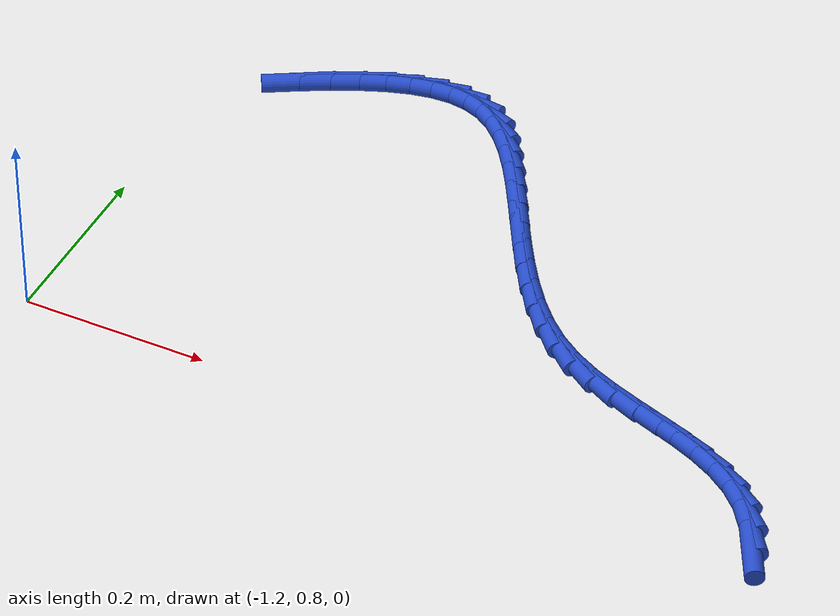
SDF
<sdf version="1.6">
 <world name="default">
  <model name="ground_plane">
   <static>1</static>
   <link name="link">
    <collision name="collision">
     <geometry><plane><normal>0 0 1</normal><size>100 100</size></plane></geometry>
     <surface><friction><ode><mu>100</mu><mu2>50</mu2></ode></friction></surface>
    </collision>
    <visual name="visual">
     <cast_shadows>0</cast_shadows>
     <geometry><plane><normal>0 0 1</normal><size>100 100</size></plane></geometry>
     <material>
      <script><uri>file://media/materials/scripts/gazebo.material</uri><name>Gazebo/WhiteGlow</name></script>
     </material>
    </visual>
   </link>
  </model>
  <model name="line">
   <link name="link_32">
    <pose>-0.40783179814437837 0.7889723178215621 0.01 0 1.57 -1.1016841542292362</pose>
    <collision name="collision">
     <geometry><cylinder><radius>0.01</radius><length>0.08</length></cylinder></geometry>
    </collision>
    <visual name="visual">
     <material>
      <script><name>Gazebo/Blue</name><uri>file://media/materials/scripts/gazebo.material</uri></script>
     </material>
     <geometry><cylinder><radius>0.01</radius><length>0.08</length></cylinder></geometry>
    </visual>
   </link>
   <link name="link_33">
    <pose>-0.42098826657242644 0.8149296656260628 0.01 0 1.57 -0.9530964984346205</pose>
    <collision name="collision">
     <geometry><cylinder><radius>0.01</radius><length>0.08</length></cylinder></geometry>
    </collision>
    <visual name="visual">
     <material>
      <script><name>Gazebo/Blue</name><uri>file://media/materials/scripts/gazebo.material</uri></script>
     </material>
     <geometry><cylinder><radius>0.01</radius><length>0.08</length></cylinder></geometry>
    </visual>
   </link>
   <link name="link_34">
    <pose>-0.4374549483786912 0.8381077394394795 0.01 0 1.57 -0.7789869360752086</pose>
    <collision name="collision">
     <geometry><cylinder><radius>0.01</radius><length>0.08</length></cylinder></geometry>
    </collision>
    <visual name="visual">
     <material>
      <script><name>Gazebo/Blue</name><uri>file://media/materials/scripts/gazebo.material</uri></script>
     </material>
     <geometry><cylinder><radius>0.01</radius><length>0.08</length></cylinder></geometry>
    </visual>
   </link>
   <link name="link_35">
    <pose>-0.4571206233203562 0.8575228551155695 0.01 0 1.57 -0.6121597621778474</pose>
    <collision name="collision">
     <geometry><cylinder><radius>0.01</radius><length>0.08</length></cylinder></geometry>
    </collision>
    <visual name="visual">
     <material>
      <script><name>Gazebo/Blue</name><uri>file://media/materials/scripts/gazebo.material</uri></script>
     </material>
     <geometry><cylinder><radius>0.01</radius><length>0.08</length></cylinder></geometry>
    </visual>
   </link>
   <link name="link_36">
    <pose>-0.4795897762439565 0.8732993125916804 0.01 0 1.57 -0.4834493400329303</pose>
    <collision name="collision">
     <geometry><cylinder><radius>0.01</radius><length>0.08</length></cylinder></geometry>
    </collision>
    <visual name="visual">
     <material>
      <script><name>Gazebo/Blue</name><uri>file://media/materials/scripts/gazebo.material</uri></script>
     </material>
     <geometry><cylinder><radius>0.01</radius><length>0.08</length></cylinder></geometry>
    </visual>
   </link>
   <link name="link_37">
    <pose>-0.5042863390584588 0.8862650817393635 0.01 0 1.57 -0.3953471236145597</pose>
    <collision name="collision">
     <geometry><cylinder><radius>0.01</radius><length>0.08</length></cylinder></geometry>
    </collision>
    <visual name="visual">
     <material>
      <script><name>Gazebo/Blue</name><uri>file://media/materials/scripts/gazebo.material</uri></script>
     </material>
     <geometry><cylinder><radius>0.01</radius><length>0.08</length></cylinder></geometry>
    </visual>
   </link>
   <link name="link_38">
    <pose>-0.5306313605147939 0.8972593689774838 0.01 0 1.57 -0.3453224569784814</pose>
    <collision name="collision">
     <geometry><cylinder><radius>0.01</radius><length>0.08</length></cylinder></geometry>
    </collision>
    <visual name="visual">
     <material>
      <script><name>Gazebo/Blue</name><uri>file://media/materials/scripts/gazebo.material</uri></script>
     </material>
     <geometry><cylinder><radius>0.01</radius><length>0.08</length></cylinder></geometry>
    </visual>
   </link>
   <link name="link_39">
    <pose>-0.5580458893638928 0.9071213807249056 0.01 0 1.57 -0.3303449713938625</pose>
    <collision name="collision">
     <geometry><cylinder><radius>0.01</radius><length>0.08</length></cylinder></geometry>
    </collision>
    <visual name="visual">
     <material>
      <script><name>Gazebo/Blue</name><uri>file://media/materials/scripts/gazebo.material</uri></script>
     </material>
     <geometry><cylinder><radius>0.01</radius><length>0.08</length></cylinder></geometry>
    </visual>
   </link>
   <link name="link_40">
    <pose>-0.5859509743566863 0.9166903234004934 0.01 0 1.57 -0.3487684655081734</pose>
    <collision name="collision">
     <geometry><cylinder><radius>0.01</radius><length>0.08</length></cylinder></geometry>
    </collision>
    <visual name="visual">
     <material>
      <script><name>Gazebo/Blue</name><uri>file://media/materials/scripts/gazebo.material</uri></script>
     </material>
     <geometry><cylinder><radius>0.01</radius><length>0.08</length></cylinder></geometry>
    </visual>
   </link>
   <link name="link_41">
    <pose>-0.6137676642441052 0.9268054034231114 0.01 0 1.57 -0.40068304663403403</pose>
    <collision name="collision">
     <geometry><cylinder><radius>0.01</radius><length>0.08</length></cylinder></geometry>
    </collision>
    <visual name="visual">
     <material>
      <script><name>Gazebo/Blue</name><uri>file://media/materials/scripts/gazebo.material</uri></script>
     </material>
     <geometry><cylinder><radius>0.01</radius><length>0.08</length></cylinder></geometry>
    </visual>
   </link>
   <link name="link_42">
    <pose>-0.6409170077770807 0.9383058272116248 0.01 0 1.57 -0.4872488547449545</pose>
    <collision name="collision">
     <geometry><cylinder><radius>0.01</radius><length>0.08</length></cylinder></geometry>
    </collision>
    <visual name="visual">
     <material>
      <script><name>Gazebo/Blue</name><uri>file://media/materials/scripts/gazebo.material</uri></script>
     </material>
     <geometry><cylinder><radius>0.01</radius><length>0.08</length></cylinder></geometry>
    </visual>
   </link>
   <link name="link_43">
    <pose>-0.6668200537065435 0.9520308011848979 0.01 0 1.57 -0.6084066487717664</pose>
    <collision name="collision">
     <geometry><cylinder><radius>0.01</radius><length>0.08</length></cylinder></geometry>
    </collision>
    <visual name="visual">
     <material>
      <script><name>Gazebo/Blue</name><uri>file://media/materials/scripts/gazebo.material</uri></script>
     </material>
     <geometry><cylinder><radius>0.01</radius><length>0.08</length></cylinder></geometry>
    </visual>
   </link>
   <link name="link_44">
    <pose>-0.6909050541292129 0.96880720377337 0.01 0 1.57 -0.7390649176321223</pose>
    <collision name="collision">
     <geometry><cylinder><radius>0.01</radius><length>0.08</length></cylinder></geometry>
    </collision>
    <visual name="visual">
     <material>
      <script><name>Gazebo/Blue</name><uri>file://media/materials/scripts/gazebo.material</uri></script>
     </material>
     <geometry><cylinder><radius>0.01</radius><length>0.08</length></cylinder></geometry>
    </visual>
   </link>
   <link name="link_45">
    <pose>-0.7129366236131514 0.988886254154824 0.01 0 1.57 -0.8459336072416772</pose>
    <collision name="collision">
     <geometry><cylinder><radius>0.01</radius><length>0.08</length></cylinder></geometry>
    </collision>
    <visual name="visual">
     <material>
      <script><name>Gazebo/Blue</name><uri>file://media/materials/scripts/gazebo.material</uri></script>
     </material>
     <geometry><cylinder><radius>0.01</radius><length>0.08</length></cylinder></geometry>
    </visual>
   </link>
   <link name="link_46">
    <pose>-0.7331520311246378 1.0117102587988083 0.01 0 1.57 -0.9283470060510146</pose>
    <collision name="collision">
     <geometry><cylinder><radius>0.01</radius><length>0.08</length></cylinder></geometry>
    </collision>
    <visual name="visual">
     <material>
      <script><name>Gazebo/Blue</name><uri>file://media/materials/scripts/gazebo.material</uri></script>
     </material>
     <geometry><cylinder><radius>0.01</radius><length>0.08</length></cylinder></geometry>
    </visual>
   </link>
   <link name="link_47">
    <pose>-0.7518240000289094 1.0366608466185265 0.01 0 1.57 -0.9890455743865944</pose>
    <collision name="collision">
     <geometry><cylinder><radius>0.01</radius><length>0.08</length></cylinder></geometry>
    </collision>
    <visual name="visual">
     <material>
      <script><name>Gazebo/Blue</name><uri>file://media/materials/scripts/gazebo.material</uri></script>
     </material>
     <geometry><cylinder><radius>0.01</radius><length>0.08</length></cylinder></geometry>
    </visual>
   </link>
   <link name="link_48">
    <pose>-0.7692252536912018 1.0631196465271808 0.01 0 1.57 -1.0305360807766697</pose>
    <collision name="collision">
     <geometry><cylinder><radius>0.01</radius><length>0.08</length></cylinder></geometry>
    </collision>
    <visual name="visual">
     <material>
      <script><name>Gazebo/Blue</name><uri>file://media/materials/scripts/gazebo.material</uri></script>
     </material>
     <geometry><cylinder><radius>0.01</radius><length>0.08</length></cylinder></geometry>
    </visual>
   </link>
   <link name="link_49">
    <pose>-0.7856285154767519 1.0904682874379752 0.01 0 1.57 -1.0545187166941372</pose>
    <collision name="collision">
     <geometry><cylinder><radius>0.01</radius><length>0.08</length></cylinder></geometry>
    </collision>
    <visual name="visual">
     <material>
      <script><name>Gazebo/Blue</name><uri>file://media/materials/scripts/gazebo.material</uri></script>
     </material>
     <geometry><cylinder><radius>0.01</radius><length>0.08</length></cylinder></geometry>
    </visual>
   </link>
   <link name="link_50">
    <pose>-0.8013065087507969 1.1180883982641125 0.01 0 1.57 -1.0616362162556325</pose>
    <collision name="collision">
     <geometry><cylinder><radius>0.01</radius><length>0.08</length></cylinder></geometry>
    </collision>
    <visual name="visual">
     <material>
      <script><name>Gazebo/Blue</name><uri>file://media/materials/scripts/gazebo.material</uri></script>
     </material>
     <geometry><cylinder><radius>0.01</radius><length>0.08</length></cylinder></geometry>
    </visual>
   </link>
   <link name="link_51">
    <pose>-0.8165319568785724 1.145361607918796 0.01 0 1.57 -1.0512915503115228</pose>
    <collision name="collision">
     <geometry><cylinder><radius>0.01</radius><length>0.08</length></cylinder></geometry>
    </collision>
    <visual name="visual">
     <material>
      <script><name>Gazebo/Blue</name><uri>file://media/materials/scripts/gazebo.material</uri></script>
     </material>
     <geometry><cylinder><radius>0.01</radius><length>0.08</length></cylinder></geometry>
    </visual>
   </link>
   <link name="link_52">
    <pose>-0.8315775832253158 1.1716695453152286 0.01 0 1.57 -1.0213863920741342</pose>
    <collision name="collision">
     <geometry><cylinder><radius>0.01</radius><length>0.08</length></cylinder></geometry>
    </collision>
    <visual name="visual">
     <material>
      <script><name>Gazebo/Blue</name><uri>file://media/materials/scripts/gazebo.material</uri></script>
     </material>
     <geometry><cylinder><radius>0.01</radius><length>0.08</length></cylinder></geometry>
    </visual>
   </link>
   <link name="link_53">
    <pose>-0.8467161111562632 1.1963938393666138 0.01 0 1.57 -0.967903652109983</pose>
    <collision name="collision">
     <geometry><cylinder><radius>0.01</radius><length>0.08</length></cylinder></geometry>
    </collision>
    <visual name="visual">
     <material>
      <script><name>Gazebo/Blue</name><uri>file://media/materials/scripts/gazebo.material</uri></script>
     </material>
     <geometry><cylinder><radius>0.01</radius><length>0.08</length></cylinder></geometry>
    </visual>
   </link>
   <link name="link_54">
    <pose>-0.8622202640366514 1.2189161189861544 0.01 0 1.57 -0.8843749267099008</pose>
    <collision name="collision">
     <geometry><cylinder><radius>0.01</radius><length>0.08</length></cylinder></geometry>
    </collision>
    <visual name="visual">
     <material>
      <script><name>Gazebo/Blue</name><uri>file://media/materials/scripts/gazebo.material</uri></script>
     </material>
     <geometry><cylinder><radius>0.01</radius><length>0.08</length></cylinder></geometry>
    </visual>
   </link>
   <link name="link_55">
    <pose>-0.8783627652317172 1.2386180130870539 0.01 0 1.57 -0.7616777205165279</pose>
    <collision name="collision">
     <geometry><cylinder><radius>0.01</radius><length>0.08</length></cylinder></geometry>
    </collision>
    <visual name="visual">
     <material>
      <script><name>Gazebo/Blue</name><uri>file://media/materials/scripts/gazebo.material</uri></script>
     </material>
     <geometry><cylinder><radius>0.01</radius><length>0.08</length></cylinder></geometry>
    </visual>
   </link>
   <link name="link_56">
    <pose>-0.8954163381066966 1.254881150582515 0.01 0 1.57 -0.5898135988125783</pose>
    <collision name="collision">
     <geometry><cylinder><radius>0.01</radius><length>0.08</length></cylinder></geometry>
    </collision>
    <visual name="visual">
     <material>
      <script><name>Gazebo/Blue</name><uri>file://media/materials/scripts/gazebo.material</uri></script>
     </material>
     <geometry><cylinder><radius>0.01</radius><length>0.08</length></cylinder></geometry>
    </visual>
   </link>
   <link name="link_57">
    <pose>-0.9136537060268264 1.2670871603857412 0.01 0 1.57 -0.3718109992747777</pose>
    <collision name="collision">
     <geometry><cylinder><radius>0.01</radius><length>0.08</length></cylinder></geometry>
    </collision>
    <visual name="visual">
     <material>
      <script><name>Gazebo/Blue</name><uri>file://media/materials/scripts/gazebo.material</uri></script>
     </material>
     <geometry><cylinder><radius>0.01</radius><length>0.08</length></cylinder></geometry>
    </visual>
   </link>
   <link name="link_58">
    <pose>-0.9333081632375927 1.2747513780517328 0.01 0 1.57 -0.15383803340425217</pose>
    <collision name="collision">
     <geometry><cylinder><radius>0.01</radius><length>0.08</length></cylinder></geometry>
    </collision>
    <visual name="visual">
     <material>
      <script><name>Gazebo/Blue</name><uri>file://media/materials/scripts/gazebo.material</uri></script>
     </material>
     <geometry><cylinder><radius>0.01</radius><length>0.08</length></cylinder></geometry>
    </visual>
   </link>
   <link name="link_59">
    <pose>-0.9544252396581058 1.2780258598558059 0.01 0 1.57 0.034275042335543</pose>
    <collision name="collision">
     <geometry><cylinder><radius>0.01</radius><length>0.08</length></cylinder></geometry>
    </collision>
    <visual name="visual">
     <material>
      <script><name>Gazebo/Blue</name><uri>file://media/materials/scripts/gazebo.material</uri></script>
     </material>
     <geometry><cylinder><radius>0.01</radius><length>0.08</length></cylinder></geometry>
    </visual>
   </link>
   <link name="link_60">
    <pose>-0.9769946338181594 1.2772519898497907 0.01 0 1.57 0.18448960536201323</pose>
    <collision name="collision">
     <geometry><cylinder><radius>0.01</radius><length>0.08</length></cylinder></geometry>
    </collision>
    <visual name="visual">
     <material>
      <script><name>Gazebo/Blue</name><uri>file://media/materials/scripts/gazebo.material</uri></script>
     </material>
     <geometry><cylinder><radius>0.01</radius><length>0.08</length></cylinder></geometry>
    </visual>
   </link>
   <link name="link_61">
    <pose>-1.0010060350357195 1.2727711833234134 0.01 0 1.57 0.29913367753106435</pose>
    <collision name="collision">
     <geometry><cylinder><radius>0.01</radius><length>0.08</length></cylinder></geometry>
    </collision>
    <visual name="visual">
     <material>
      <script><name>Gazebo/Blue</name><uri>file://media/materials/scripts/gazebo.material</uri></script>
     </material>
     <geometry><cylinder><radius>0.01</radius><length>0.08</length></cylinder></geometry>
    </visual>
   </link>
   <link name="link_62">
    <pose>-1.0264491326287508 1.2649248555663986 0.01 0 1.57 0.38449962003850335</pose>
    <collision name="collision">
     <geometry><cylinder><radius>0.01</radius><length>0.08</length></cylinder></geometry>
    </collision>
    <visual name="visual">
     <material>
      <script><name>Gazebo/Blue</name><uri>file://media/materials/scripts/gazebo.material</uri></script>
     </material>
     <geometry><cylinder><radius>0.01</radius><length>0.08</length></cylinder></geometry>
    </visual>
   </link>
   <link name="link_63">
    <pose>-1.0533136159152192 1.2540544218684704 0.01 0 1.57 0.4469695712005826</pose>
    <collision name="collision">
     <geometry><cylinder><radius>0.01</radius><length>0.08</length></cylinder></geometry>
    </collision>
    <visual name="visual">
     <material>
      <script><name>Gazebo/Blue</name><uri>file://media/materials/scripts/gazebo.material</uri></script>
     </material>
     <geometry><cylinder><radius>0.01</radius><length>0.08</length></cylinder></geometry>
    </visual>
   </link>
   <link name="link_64">
    <pose>-1.0815891742130905 1.2405012975193548 0.01 0 1.57 0.49171412083916854</pose>
    <collision name="collision">
     <geometry><cylinder><radius>0.01</radius><length>0.08</length></cylinder></geometry>
    </collision>
    <visual name="visual">
     <material>
      <script><name>Gazebo/Blue</name><uri>file://media/materials/scripts/gazebo.material</uri></script>
     </material>
     <geometry><cylinder><radius>0.01</radius><length>0.08</length></cylinder></geometry>
    </visual>
   </link>
   <link name="link_65">
    <pose>-1.1112654968403295 1.2246068978087767 0.01 0 1.57 0.5225805666138809</pose>
    <collision name="collision">
     <geometry><cylinder><radius>0.01</radius><length>0.08</length></cylinder></geometry>
    </collision>
    <visual name="visual">
     <material>
      <script><name>Gazebo/Blue</name><uri>file://media/materials/scripts/gazebo.material</uri></script>
     </material>
     <geometry><cylinder><radius>0.01</radius><length>0.08</length></cylinder></geometry>
    </visual>
   </link>
  </model>
 </world>
</sdf>
